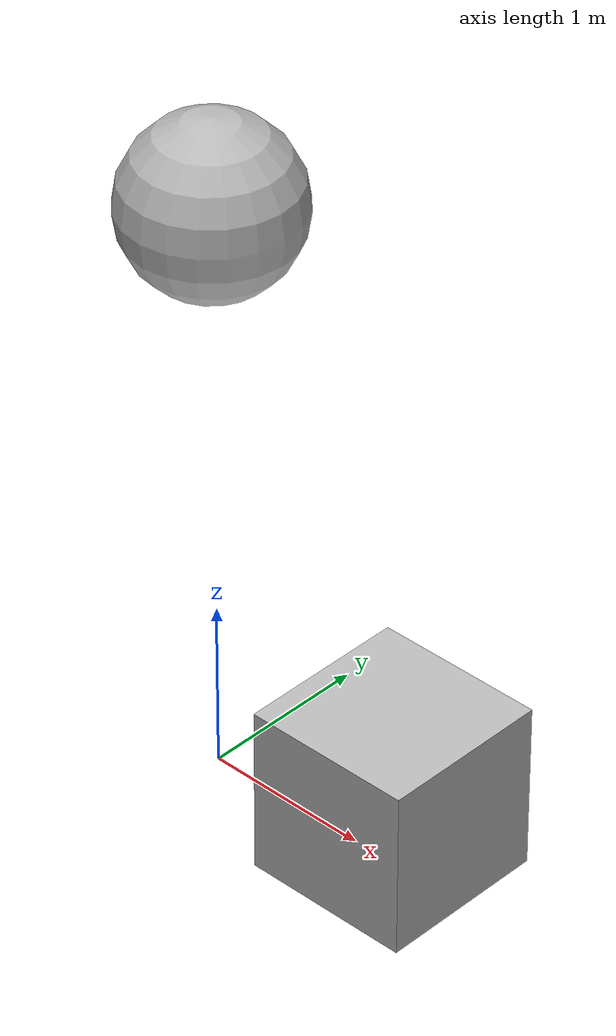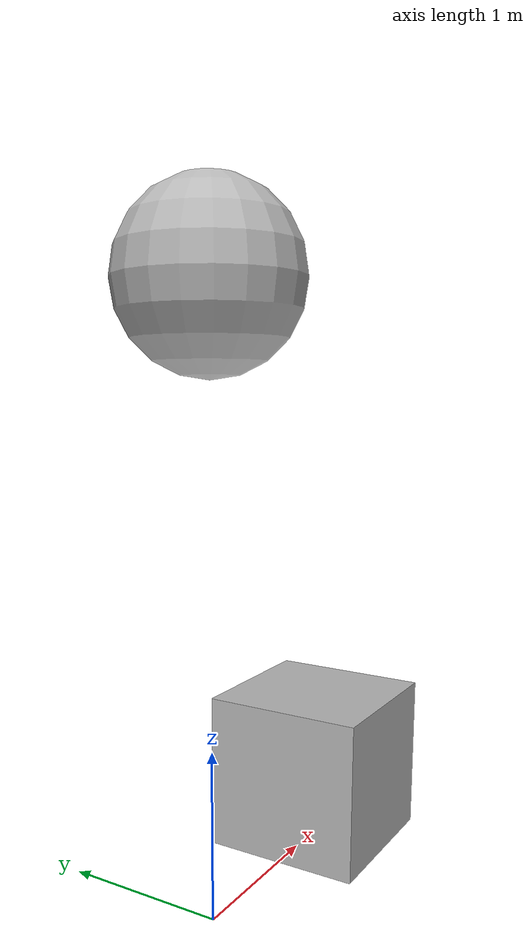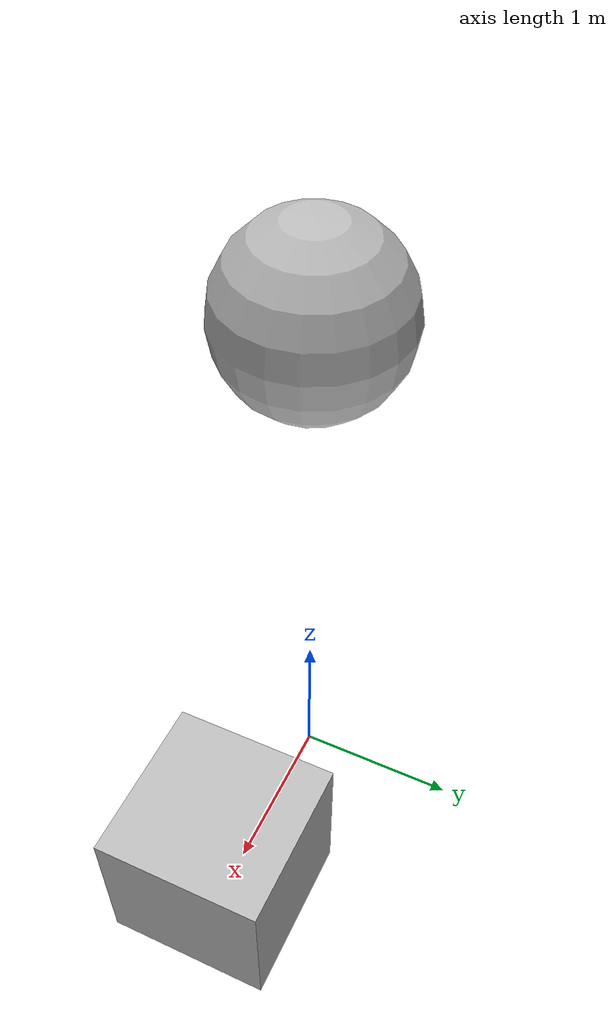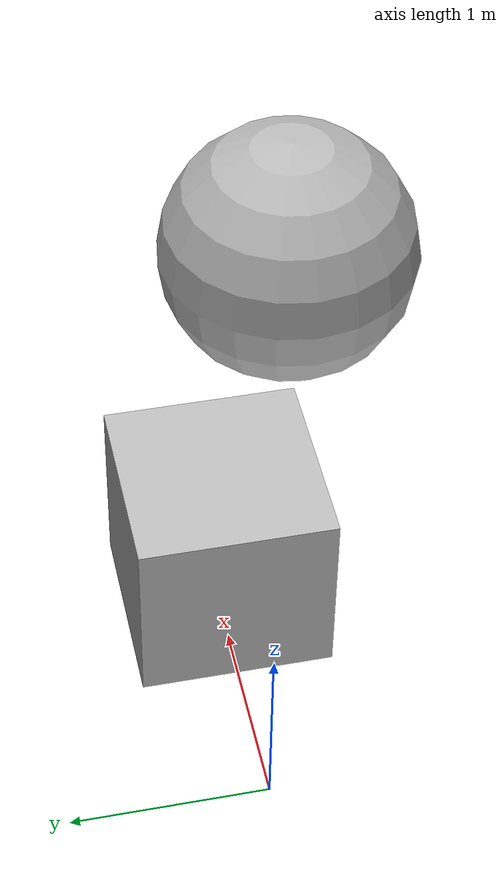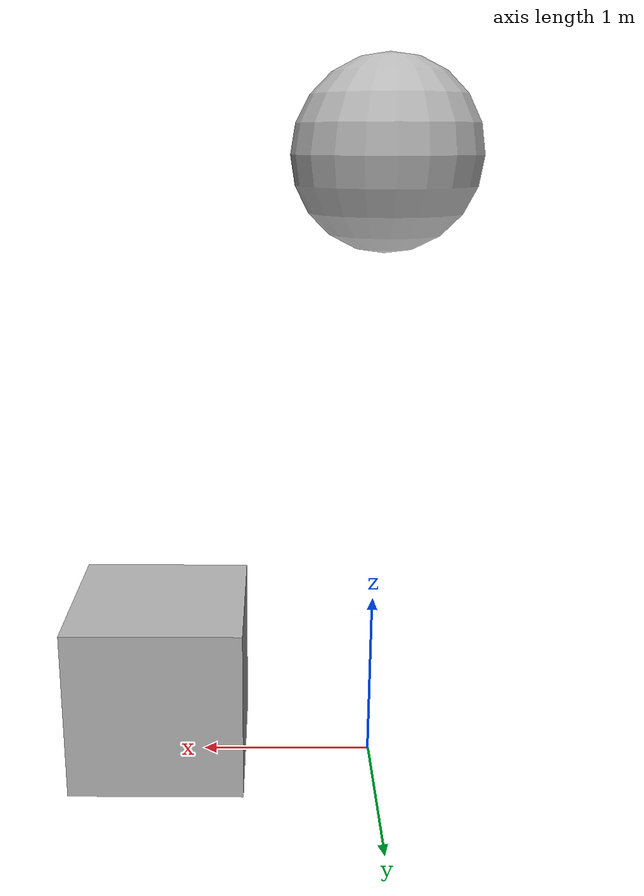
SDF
<?xml version="1.0"?>
<sdf version="1.6">
  <model name="model_00">
    <pose>0 0 0.5  0 0 0</pose>
    <link name="link_00">
      <pose>0 0 3  0 0 0</pose>
      <collision name="collision_00">
        <geometry>
          <sphere>
            <radius>0.5</radius>
          </sphere>
        </geometry>
      </collision>
      <visual name="visual_00">
        <geometry>
          <sphere>
            <radius>0.5</radius>
          </sphere>
        </geometry>
      </visual>
    </link>

    <model name="model_01">
      <pose>1.0 0 0.0  0 0 0</pose>
      <link name="link_01">
        <pose>0.25 0 0.0  0 0 0</pose>
        <collision name="collision_01">
          <geometry>
            <box>
              <size>1 1 1</size>
            </box>
          </geometry>
        </collision>
        <visual name="visual_01">
          <geometry>
            <box>
              <size>1 1 1</size>
            </box>
          </geometry>
        </visual>
      </link>
    </model>

    <joint name="joint_00" type="revolute">
      <parent>link_00</parent>
      <child>model_01::link_01</child>
      <pose>0.0 0.0 0.0  0.0 0.0 0.0</pose>
      <axis>
        <xyz>0.0 1.0 0.0</xyz>
      </axis>
    </joint>

  </model>
</sdf>
